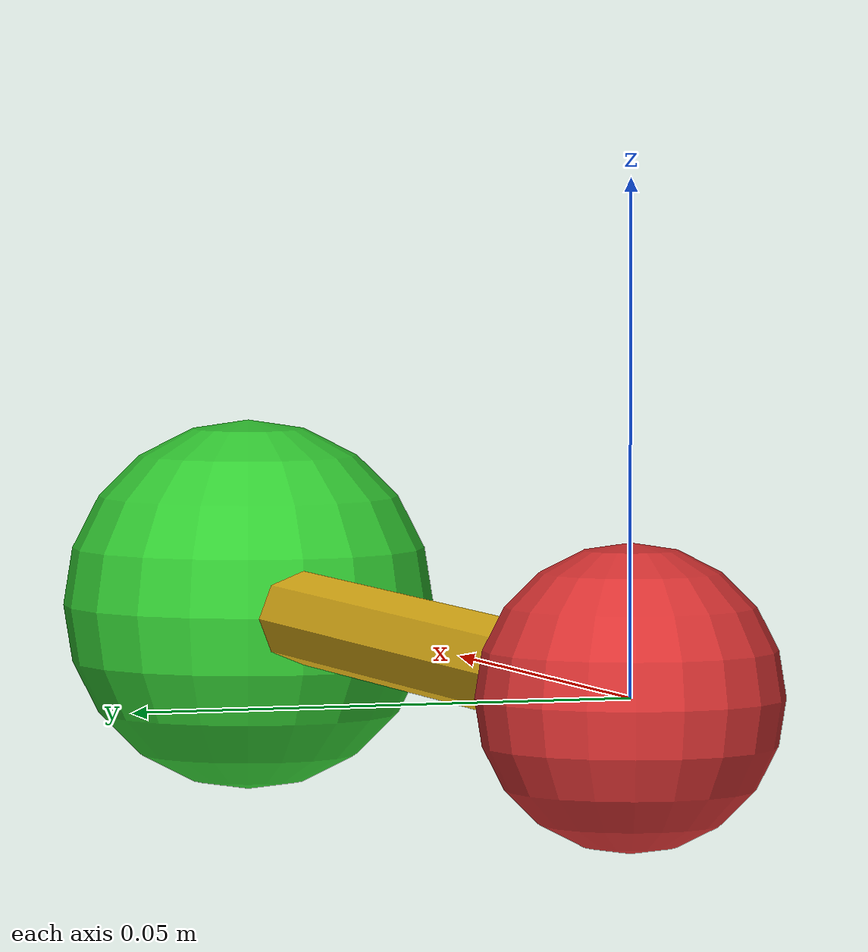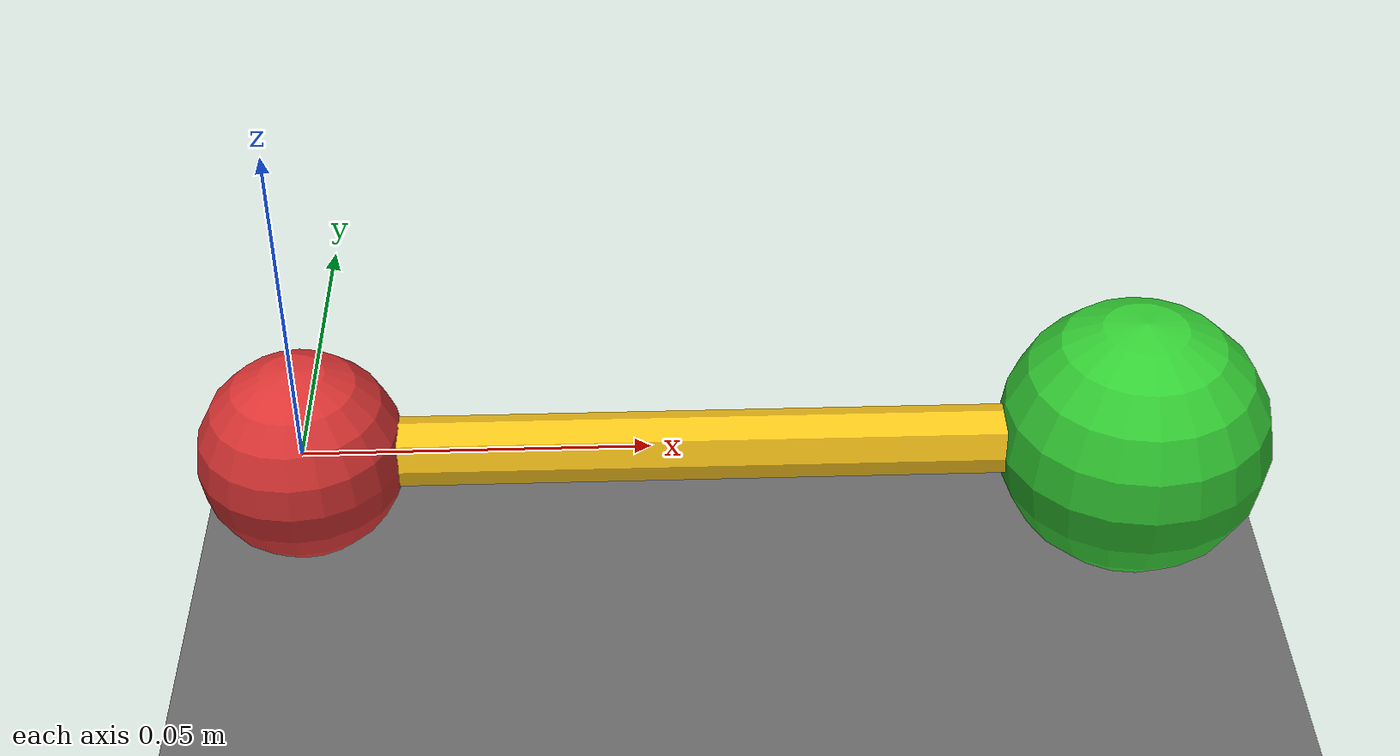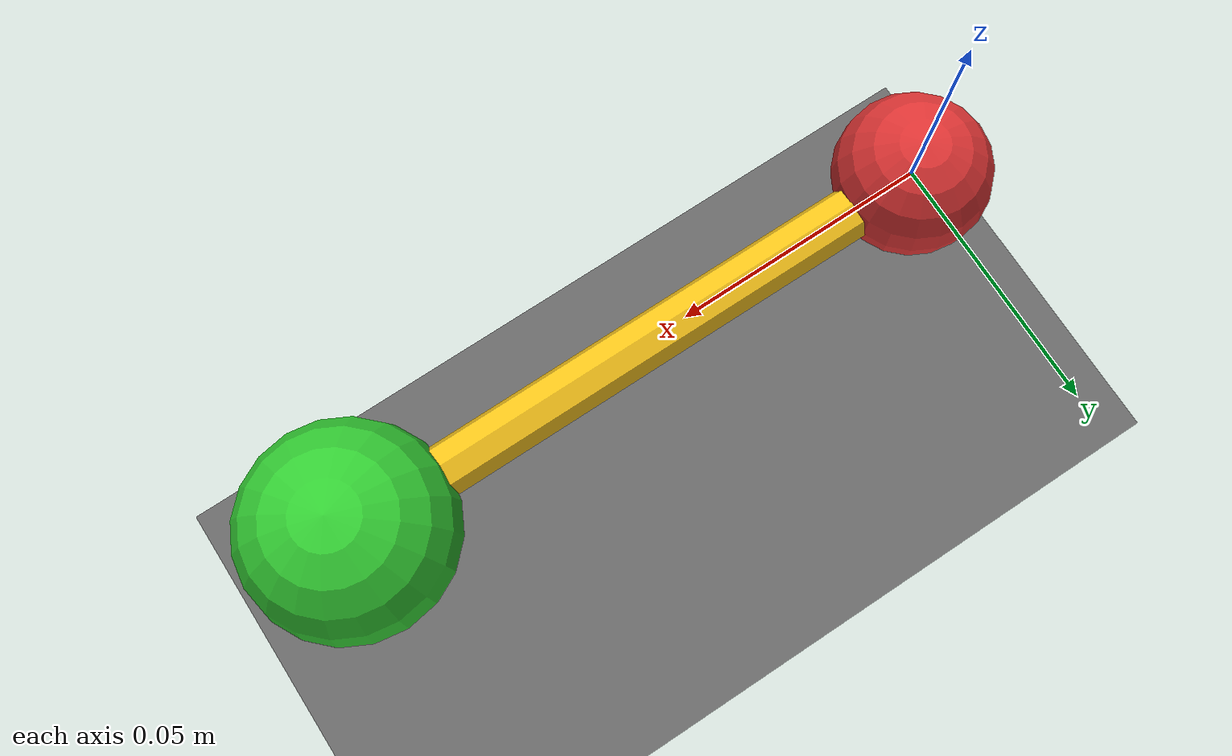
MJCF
<mujoco model="elastic_tether">
  <option timestep="0.002" gravity="0 0 0" integrator="implicitfast"/>

  <visual>
    <headlight diffuse="0.6 0.6 0.6" ambient="0.3 0.3 0.3" specular="0 0 0"/>
    <rgba haze="0.15 0.25 0.35 1"/>
  </visual>

  <worldbody>
    <geom name="floor" type="plane" size="1 1 0.1" pos="0 0 -0.05"
          rgba="0.4 0.4 0.4 0.3" contype="0" conaffinity="0"/>

    <body name="anchor" pos="0 0 0">
      <geom type="sphere" size="0.015" rgba="0.85 0.2 0.2 1"/>
      <site name="anchor_site" size="0.005"/>
    </body>

    <!-- EE 是纯 mocap body：位置精确由 data.mocap_pos[0] 给定，
         模拟位置控制机械臂末端。site 直接挂在这里，tendon 几何正确。
         没有自由体，没有 weld，不引入弹簧质量振荡。 -->
    <body name="ee" mocap="true" pos="0.12 0 0">
      <geom type="sphere" size="0.02" rgba="0.2 0.8 0.2 1"
            contype="0" conaffinity="0"/>
      <site name="ee_site" size="0.005"/>
    </body>
  </worldbody>

  <tendon>
    <spatial name="elastic_tether"
             stiffness="50.0" damping="0.5" springlength="0 0.25"
             width="0.005" rgba="0.95 0.75 0.1 1">
      <site site="anchor_site"/>
      <site site="ee_site"/>
    </spatial>
  </tendon>
</mujoco>
